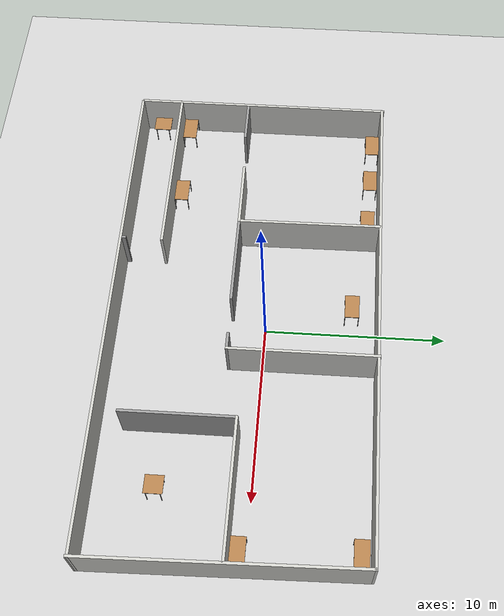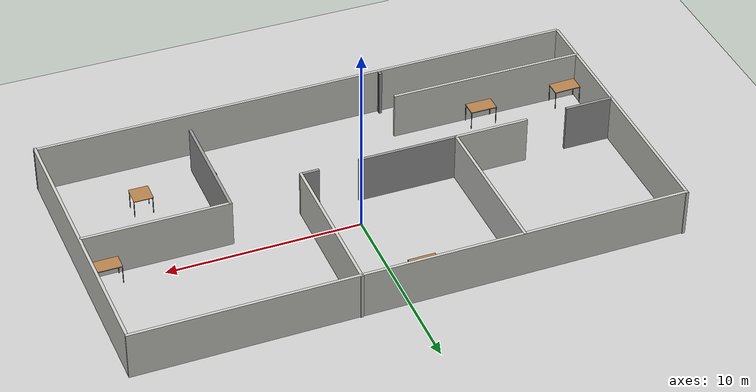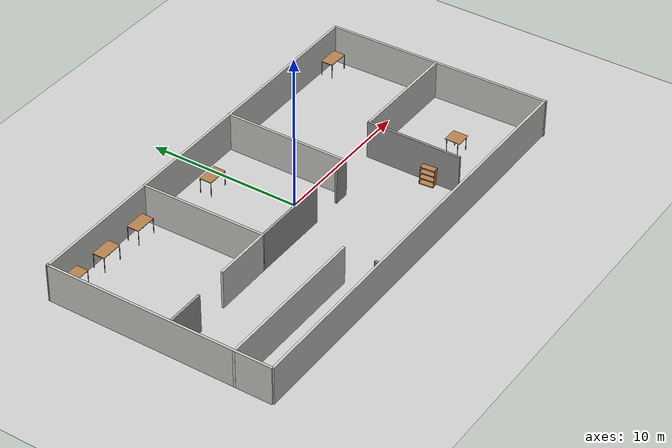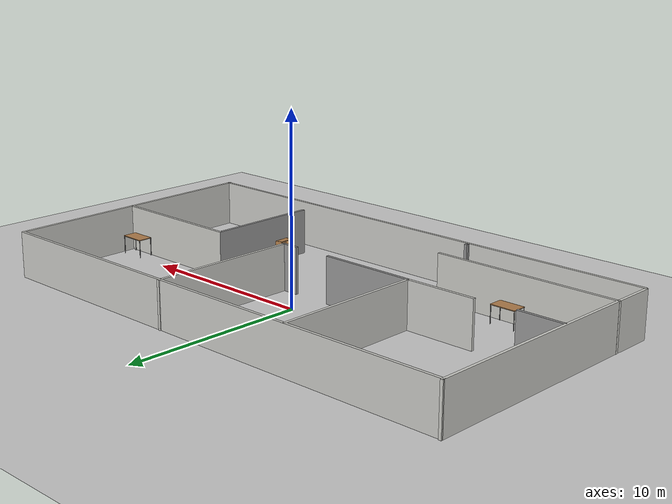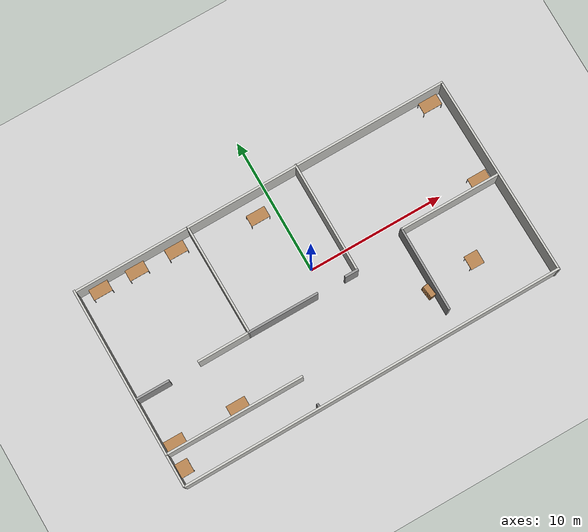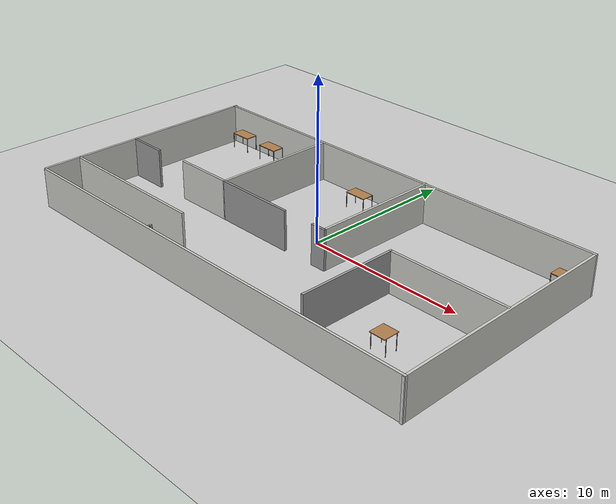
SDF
<sdf version="1.6">
 <world name="default">
  <light name="sun" type="directional">
   <pose>0 0 10 0 -0 0</pose>
   <diffuse>0.8 0.8 0.8 1</diffuse>
   <specular>0.1 0.1 0.1 1</specular>
   <attenuation>
    <range>1000</range>
    <constant>0.9</constant>
    <linear>0.01</linear>
    <quadratic>0.001</quadratic>
   </attenuation>
   <direction>-0.5 0.5 -1</direction>
  </light>
  <model name="ground_plane">
   <static>1</static>
   <link name="link">
    <collision name="collision">
     <geometry><plane><normal>0 0 1</normal><size>100 100</size></plane></geometry>
     <surface><friction><ode><mu>100</mu><mu2>50</mu2></ode></friction></surface>
    </collision>
    <visual name="visual">
     <cast_shadows>0</cast_shadows>
     <geometry><plane><normal>0 0 1</normal><size>100 100</size></plane></geometry>
     <material>
      <script><uri>file://media/materials/scripts/gazebo.material</uri><name>Gazebo/Grey</name></script>
     </material>
    </visual>
   </link>
  </model>
  <gravity>0 0 -9.8</gravity>
  <magnetic_field>6e-06 2.3e-05 -4.2e-05</magnetic_field>
  <atmosphere type="adiabatic"/>
  <physics name="default_physics" default="0" type="ode">
   <max_step_size>0.001</max_step_size>
   <real_time_factor>1</real_time_factor>
   <real_time_update_rate>1000</real_time_update_rate>
  </physics>
  <scene><ambient>0.4 0.4 0.4 1</ambient><background>0.7 0.7 0.7 1</background><shadows>1</shadows></scene>
  <spherical_coordinates>
   <surface_model>EARTH_WGS84</surface_model>
   <latitude_deg>0</latitude_deg>
   <longitude_deg>0</longitude_deg>
   <elevation>0</elevation>
   <heading_deg>0</heading_deg>
  </spherical_coordinates>
  <model name="ugly_house">
   <pose>-0.218496 -1.10283 0 0 -0 0</pose>
   <link name="Wall_10">
    <collision name="Wall_10_Collision">
     <geometry><box><size>28.1305 0.15 2.5</size></box></geometry>
     <pose>0 0 1.25 0 -0 0</pose>
    </collision>
    <visual name="Wall_10_Visual">
     <pose>0 0 1.25 0 -0 0</pose>
     <geometry><box><size>28.1305 0.15 2.5</size></box></geometry>
     <material>
      <script><uri>file://media/materials/scripts/gazebo.material</uri><name>Gazebo/CeilingTiled</name></script>
      <ambient>1 1 1 1</ambient>
     </material>
    </visual>
    <pose>-0.125051 7.31516 0 0 0 -3.13636</pose>
   </link>
   <link name="Wall_11">
    <collision name="Wall_11_Collision">
     <geometry><box><size>14.75 0.15 2.5</size></box></geometry>
     <pose>0 0 1.25 0 -0 0</pose>
    </collision>
    <visual name="Wall_11_Visual">
     <pose>0 0 1.25 0 -0 0</pose>
     <geometry><box><size>14.75 0.15 2.5</size></box></geometry>
     <material>
      <script><uri>file://media/materials/scripts/gazebo.material</uri><name>Gazebo/CeilingTiled</name></script>
      <ambient>1 1 1 1</ambient>
     </material>
    </visual>
    <pose>-14.1153 -0.004617 0 0 0 -1.5708</pose>
   </link>
   <link name="Wall_15">
    <collision name="Wall_15_Collision">
     <geometry><box><size>8.19219 0.15 2.5</size></box></geometry>
     <pose>0 0 1.25 0 -0 0</pose>
    </collision>
    <visual name="Wall_15_Visual">
     <pose>0 0 1.25 0 -0 0</pose>
     <geometry><box><size>8.19219 0.15 2.5</size></box></geometry>
     <material>
      <script><uri>file://media/materials/scripts/gazebo.material</uri><name>Gazebo/CeilingTiled</name></script>
      <ambient>1 1 1 1</ambient>
     </material>
    </visual>
    <pose>-5.57378 3.25942 0 0 0 -1.56274</pose>
   </link>
   <link name="Wall_16">
    <collision name="Wall_16_Collision">
     <geometry><box><size>3.92413 0.15 2.5</size></box></geometry>
     <pose>0 0 1.25 0 -0 0</pose>
    </collision>
    <visual name="Wall_16_Visual">
     <pose>0 0 1.25 0 -0 0</pose>
     <geometry><box><size>3.92413 0.15 2.5</size></box></geometry>
     <material>
      <script><uri>file://media/materials/scripts/gazebo.material</uri><name>Gazebo/CeilingTiled</name></script>
      <ambient>1 1 1 1</ambient>
     </material>
    </visual>
    <pose>-7.42842 -0.772989 0 0 0 -3.13553</pose>
   </link>
   <link name="Wall_18">
    <collision name="Wall_18_Collision">
     <geometry><box><size>8.25 0.15 2.5</size></box></geometry>
     <pose>0 0 1.25 0 -0 0</pose>
    </collision>
    <visual name="Wall_18_Visual">
     <pose>0 0 1.25 0 -0 0</pose>
     <geometry><box><size>8.25 0.15 2.5</size></box></geometry>
     <material>
      <script><uri>file://media/materials/scripts/gazebo.material</uri><name>Gazebo/CeilingTiled</name></script>
      <ambient>1 1 1 1</ambient>
     </material>
    </visual>
    <pose>2.62857 3.32344 0 0 0 -1.5708</pose>
   </link>
   <link name="Wall_21">
    <collision name="Wall_21_Collision">
     <geometry><box><size>7.5 0.15 2.5</size></box></geometry>
     <pose>0 0 1.25 0 -0 0</pose>
    </collision>
    <visual name="Wall_21_Visual">
     <pose>0 0 1.25 0 -0 0</pose>
     <geometry><box><size>7.5 0.15 2.5</size></box></geometry>
     <material>
      <script><uri>file://media/materials/scripts/gazebo.material</uri><name>Gazebo/CeilingTiled</name></script>
      <ambient>1 1 1 1</ambient>
     </material>
    </visual>
    <pose>10.2124 0.162229 0 0 -0 3.14159</pose>
   </link>
   <link name="Wall_24">
    <collision name="Wall_24_Collision">
     <geometry><box><size>10.25 0.15 2.5</size></box></geometry>
     <pose>0 0 1.25 0 -0 0</pose>
    </collision>
    <visual name="Wall_24_Visual">
     <pose>0 0 1.25 0 -0 0</pose>
     <geometry><box><size>10.25 0.15 2.5</size></box></geometry>
     <material>
      <script><uri>file://media/materials/scripts/gazebo.material</uri><name>Gazebo/CeilingTiled</name></script>
      <ambient>1 1 1 1</ambient>
     </material>
    </visual>
    <pose>-9.07004 -5.00192 0 0 -0 0</pose>
   </link>
   <link name="Wall_26">
    <collision name="Wall_26_Collision">
     <geometry><box><size>0.15 0.15 2.5</size></box></geometry>
     <pose>0 0 1.25 0 -0 0</pose>
    </collision>
    <visual name="Wall_26_Visual">
     <pose>0 0 1.25 0 -0 0</pose>
     <geometry><box><size>0.15 0.15 2.5</size></box></geometry>
     <material>
      <script><uri>file://media/materials/scripts/gazebo.material</uri><name>Gazebo/Grey</name></script>
      <ambient>1 1 1 1</ambient>
     </material>
    </visual>
    <pose>-4.02004 -7.10192 0 0 -0 0</pose>
   </link>
   <link name="Wall_27">
    <collision name="Wall_27_Collision">
     <geometry><box><size>0.25 0.15 2.5</size></box></geometry>
     <pose>0 0 1.25 0 -0 0</pose>
    </collision>
    <visual name="Wall_27_Visual">
     <pose>0 0 1.25 0 -0 0</pose>
     <geometry><box><size>0.25 0.15 2.5</size></box></geometry>
     <material>
      <script><uri>file://media/materials/scripts/gazebo.material</uri><name>Gazebo/Grey</name></script>
      <ambient>1 1 1 1</ambient>
     </material>
    </visual>
    <pose>-4.02004 -7.15193 0 0 0 -1.5708</pose>
   </link>
   <link name="Wall_30">
    <collision name="Wall_30_Collision">
     <geometry><box><size>2.5 0.15 2.5</size></box></geometry>
     <pose>0 0 1.25 0 -0 0</pose>
    </collision>
    <visual name="Wall_30_Visual">
     <pose>0 0 1.25 0 -0 0</pose>
     <geometry><box><size>2.5 0.15 2.5</size></box></geometry>
     <material>
      <script><uri>file://media/materials/scripts/gazebo.material</uri><name>Gazebo/Grey</name></script>
      <ambient>1 1 1 1</ambient>
     </material>
    </visual>
    <pose>-12.8441 -0.912766 0 0 -0 0</pose>
   </link>
   <link name="Wall_32">
    <collision name="Wall_32_Collision">
     <geometry><box><size>5.25 0.15 2.5</size></box></geometry>
     <pose>0 0 1.25 0 -0 0</pose>
    </collision>
    <visual name="Wall_32_Visual">
     <pose>0 0 1.25 0 -0 0</pose>
     <geometry><box><size>5.25 0.15 2.5</size></box></geometry>
     <material>
      <script><uri>file://media/materials/scripts/gazebo.material</uri><name>Gazebo/Grey</name></script>
      <ambient>1 1 1 1</ambient>
     </material>
    </visual>
    <pose>-2.99139 -0.761544 0 0 -0 0</pose>
   </link>
   <link name="Wall_34">
    <collision name="Wall_34_Collision">
     <geometry><box><size>1 0.15 2.5</size></box></geometry>
     <pose>0 0 1.25 0 -0 0</pose>
    </collision>
    <visual name="Wall_34_Visual">
     <pose>0 0 1.25 0 -0 0</pose>
     <geometry><box><size>1 0.15 2.5</size></box></geometry>
     <material>
      <script><uri>file://media/materials/scripts/gazebo.material</uri><name>Gazebo/Grey</name></script>
      <ambient>1 1 1 1</ambient>
     </material>
    </visual>
    <pose>2.20357 -0.726564 0 0 -0 3.14159</pose>
   </link>
   <link name="Wall_36">
    <collision name="Wall_36_Collision">
     <geometry><box><size>6.25 0.15 2.5</size></box></geometry>
     <pose>0 0 1.25 0 -0 0</pose>
    </collision>
    <visual name="Wall_36_Visual">
     <pose>0 0 1.25 0 -0 0</pose>
     <geometry><box><size>6.25 0.15 2.5</size></box></geometry>
     <material>
      <script><uri>file://media/materials/scripts/gazebo.material</uri><name>Gazebo/Grey</name></script>
      <ambient>1 1 1 1</ambient>
     </material>
    </visual>
    <pose>6.53735 -2.88777 0 0 0 -1.5708</pose>
   </link>
   <link name="Wall_7">
    <collision name="Wall_7_Collision">
     <geometry><box><size>28.2997 0.15 2.5</size></box></geometry>
     <pose>0 0 1.25 0 -0 0</pose>
    </collision>
    <visual name="Wall_7_Visual">
     <pose>0 0 1.25 0 -0 0</pose>
     <geometry><box><size>28.2997 0.15 2.5</size></box></geometry>
     <material>
      <script><uri>file://media/materials/scripts/gazebo.material</uri><name>Gazebo/CeilingTiled</name></script>
      <ambient>1 1 1 1</ambient>
     </material>
    </visual>
    <pose>0.043908 -7.31867 0 0 -0 0.004958</pose>
   </link>
   <link name="Wall_9">
    <collision name="Wall_9_Collision">
     <geometry><box><size>14.7895 0.15 2.5</size></box></geometry>
     <pose>0 0 1.25 0 -0 0</pose>
    </collision>
    <visual name="Wall_9_Visual">
     <pose>0 0 1.25 0 -0 0</pose>
     <geometry><box><size>14.7895 0.15 2.5</size></box></geometry>
     <material>
      <script><uri>file://media/materials/scripts/gazebo.material</uri><name>Gazebo/CeilingTiled</name></script>
      <ambient>1 1 1 1</ambient>
     </material>
    </visual>
    <pose>13.992 0.023252 0 0 -0 1.58812</pose>
   </link>
   <static>1</static>
  </model>
  <model name="table">
   <static>0</static>
   <link name="link">
    <collision name="surface">
     <pose>0 0 1 0 -0 0</pose>
     <geometry><box><size>1.5 0.8 0.03</size></box></geometry>
     <surface><friction><ode><mu>0.6</mu><mu2>0.6</mu2></ode></friction></surface>
    </collision>
    <visual name="visual1">
     <pose>0 0 1 0 -0 0</pose>
     <geometry><box><size>1.4 0.8 0.04</size></box></geometry>
     <material>
      <script><uri>file://media/materials/scripts/gazebo.material</uri><name>Gazebo/Wood</name></script>
     </material>
    </visual>
    <collision name="front_left_leg">
     <pose>0.68 0.38 0.5 0 -0 0</pose>
     <geometry><cylinder><radius>0.02</radius><length>1</length></cylinder></geometry>
    </collision>
    <visual name="front_left_leg">
     <pose>0.68 0.38 0.5 0 -0 0</pose>
     <geometry><cylinder><radius>0.02</radius><length>1</length></cylinder></geometry>
     <material>
      <script><uri>file://media/materials/scripts/gazebo.material</uri><name>Gazebo/Grey</name></script>
     </material>
    </visual>
    <collision name="front_right_leg">
     <pose>0.68 -0.38 0.5 0 -0 0</pose>
     <geometry><cylinder><radius>0.02</radius><length>1</length></cylinder></geometry>
    </collision>
    <visual name="front_right_leg">
     <pose>0.68 -0.38 0.5 0 -0 0</pose>
     <geometry><cylinder><radius>0.02</radius><length>1</length></cylinder></geometry>
     <material>
      <script><uri>file://media/materials/scripts/gazebo.material</uri><name>Gazebo/Grey</name></script>
     </material>
    </visual>
    <collision name="back_right_leg">
     <pose>-0.68 -0.38 0.5 0 -0 0</pose>
     <geometry><cylinder><radius>0.02</radius><length>1</length></cylinder></geometry>
    </collision>
    <visual name="back_right_leg">
     <pose>-0.68 -0.38 0.5 0 -0 0</pose>
     <geometry><cylinder><radius>0.02</radius><length>1</length></cylinder></geometry>
     <material>
      <script><uri>file://media/materials/scripts/gazebo.material</uri><name>Gazebo/Grey</name></script>
     </material>
    </visual>
    <collision name="back_left_leg">
     <pose>-0.68 0.38 0.5 0 -0 0</pose>
     <geometry><cylinder><radius>0.02</radius><length>1</length></cylinder></geometry>
    </collision>
    <visual name="back_left_leg">
     <pose>-0.68 0.38 0.5 0 -0 0</pose>
     <geometry><cylinder><radius>0.02</radius><length>1</length></cylinder></geometry>
     <material>
      <script><uri>file://media/materials/scripts/gazebo.material</uri><name>Gazebo/Grey</name></script>
     </material>
    </visual>
    <inertial>
     <inertia><ixx>1</ixx><ixy>0</ixy><ixz>0</ixz><iyy>1</iyy><iyz>0</iyz><izz>1</izz></inertia>
     <mass>1</mass>
    </inertial>
   </link>
   <pose>-1.3501 4.78866 -1e-06 -2e-06 0 0</pose>
  </model>
  <model name="table_0">
   <static>0</static>
   <link name="link">
    <collision name="surface">
     <pose>0 0 1 0 -0 0</pose>
     <geometry><box><size>1.5 0.8 0.03</size></box></geometry>
     <surface><friction><ode><mu>0.6</mu><mu2>0.6</mu2></ode></friction></surface>
    </collision>
    <visual name="visual1">
     <pose>0 0 1 0 -0 0</pose>
     <geometry><box><size>1.4 0.8 0.04</size></box></geometry>
     <material>
      <script><uri>file://media/materials/scripts/gazebo.material</uri><name>Gazebo/Wood</name></script>
     </material>
    </visual>
    <collision name="front_left_leg">
     <pose>0.68 0.38 0.5 0 -0 0</pose>
     <geometry><cylinder><radius>0.02</radius><length>1</length></cylinder></geometry>
    </collision>
    <visual name="front_left_leg">
     <pose>0.68 0.38 0.5 0 -0 0</pose>
     <geometry><cylinder><radius>0.02</radius><length>1</length></cylinder></geometry>
     <material>
      <script><uri>file://media/materials/scripts/gazebo.material</uri><name>Gazebo/Grey</name></script>
     </material>
    </visual>
    <collision name="front_right_leg">
     <pose>0.68 -0.38 0.5 0 -0 0</pose>
     <geometry><cylinder><radius>0.02</radius><length>1</length></cylinder></geometry>
    </collision>
    <visual name="front_right_leg">
     <pose>0.68 -0.38 0.5 0 -0 0</pose>
     <geometry><cylinder><radius>0.02</radius><length>1</length></cylinder></geometry>
     <material>
      <script><uri>file://media/materials/scripts/gazebo.material</uri><name>Gazebo/Grey</name></script>
     </material>
    </visual>
    <collision name="back_right_leg">
     <pose>-0.68 -0.38 0.5 0 -0 0</pose>
     <geometry><cylinder><radius>0.02</radius><length>1</length></cylinder></geometry>
    </collision>
    <visual name="back_right_leg">
     <pose>-0.68 -0.38 0.5 0 -0 0</pose>
     <geometry><cylinder><radius>0.02</radius><length>1</length></cylinder></geometry>
     <material>
      <script><uri>file://media/materials/scripts/gazebo.material</uri><name>Gazebo/Grey</name></script>
     </material>
    </visual>
    <collision name="back_left_leg">
     <pose>-0.68 0.38 0.5 0 -0 0</pose>
     <geometry><cylinder><radius>0.02</radius><length>1</length></cylinder></geometry>
    </collision>
    <visual name="back_left_leg">
     <pose>-0.68 0.38 0.5 0 -0 0</pose>
     <geometry><cylinder><radius>0.02</radius><length>1</length></cylinder></geometry>
     <material>
      <script><uri>file://media/materials/scripts/gazebo.material</uri><name>Gazebo/Grey</name></script>
     </material>
    </visual>
    <inertial>
     <inertia><ixx>1</ixx><ixy>0</ixy><ixz>0</ixz><iyy>1</iyy><iyz>0</iyz><izz>1</izz></inertia>
     <mass>1</mass>
    </inertial>
   </link>
   <pose>-12.8482 5.67188 0 0 -0 0.005232</pose>
  </model>
  <model name="table_1">
   <static>0</static>
   <link name="link">
    <collision name="surface">
     <pose>0 0 1 0 -0 0</pose>
     <geometry><box><size>1.5 0.8 0.03</size></box></geometry>
     <surface><friction><ode><mu>0.6</mu><mu2>0.6</mu2></ode></friction></surface>
    </collision>
    <visual name="visual1">
     <pose>0 0 1 0 -0 0</pose>
     <geometry><box><size>1.4 0.8 0.04</size></box></geometry>
     <material>
      <script><uri>file://media/materials/scripts/gazebo.material</uri><name>Gazebo/Wood</name></script>
     </material>
    </visual>
    <collision name="front_left_leg">
     <pose>0.68 0.38 0.5 0 -0 0</pose>
     <geometry><cylinder><radius>0.02</radius><length>1</length></cylinder></geometry>
    </collision>
    <visual name="front_left_leg">
     <pose>0.68 0.38 0.5 0 -0 0</pose>
     <geometry><cylinder><radius>0.02</radius><length>1</length></cylinder></geometry>
     <material>
      <script><uri>file://media/materials/scripts/gazebo.material</uri><name>Gazebo/Grey</name></script>
     </material>
    </visual>
    <collision name="front_right_leg">
     <pose>0.68 -0.38 0.5 0 -0 0</pose>
     <geometry><cylinder><radius>0.02</radius><length>1</length></cylinder></geometry>
    </collision>
    <visual name="front_right_leg">
     <pose>0.68 -0.38 0.5 0 -0 0</pose>
     <geometry><cylinder><radius>0.02</radius><length>1</length></cylinder></geometry>
     <material>
      <script><uri>file://media/materials/scripts/gazebo.material</uri><name>Gazebo/Grey</name></script>
     </material>
    </visual>
    <collision name="back_right_leg">
     <pose>-0.68 -0.38 0.5 0 -0 0</pose>
     <geometry><cylinder><radius>0.02</radius><length>1</length></cylinder></geometry>
    </collision>
    <visual name="back_right_leg">
     <pose>-0.68 -0.38 0.5 0 -0 0</pose>
     <geometry><cylinder><radius>0.02</radius><length>1</length></cylinder></geometry>
     <material>
      <script><uri>file://media/materials/scripts/gazebo.material</uri><name>Gazebo/Grey</name></script>
     </material>
    </visual>
    <collision name="back_left_leg">
     <pose>-0.68 0.38 0.5 0 -0 0</pose>
     <geometry><cylinder><radius>0.02</radius><length>1</length></cylinder></geometry>
    </collision>
    <visual name="back_left_leg">
     <pose>-0.68 0.38 0.5 0 -0 0</pose>
     <geometry><cylinder><radius>0.02</radius><length>1</length></cylinder></geometry>
     <material>
      <script><uri>file://media/materials/scripts/gazebo.material</uri><name>Gazebo/Grey</name></script>
     </material>
    </visual>
    <inertial>
     <inertia><ixx>1</ixx><ixy>0</ixy><ixz>0</ixz><iyy>1</iyy><iyz>0</iyz><izz>1</izz></inertia>
     <mass>1</mass>
    </inertial>
   </link>
   <pose>-7.19687 5.51552 -1e-06 -1e-06 0 0</pose>
  </model>
  <model name="table_2">
   <static>0</static>
   <link name="link">
    <collision name="surface">
     <pose>0 0 1 0 -0 0</pose>
     <geometry><box><size>1.5 0.8 0.03</size></box></geometry>
     <surface><friction><ode><mu>0.6</mu><mu2>0.6</mu2></ode></friction></surface>
    </collision>
    <visual name="visual1">
     <pose>0 0 1 0 -0 0</pose>
     <geometry><box><size>1.4 0.8 0.04</size></box></geometry>
     <material>
      <script><uri>file://media/materials/scripts/gazebo.material</uri><name>Gazebo/Wood</name></script>
     </material>
    </visual>
    <collision name="front_left_leg">
     <pose>0.68 0.38 0.5 0 -0 0</pose>
     <geometry><cylinder><radius>0.02</radius><length>1</length></cylinder></geometry>
    </collision>
    <visual name="front_left_leg">
     <pose>0.68 0.38 0.5 0 -0 0</pose>
     <geometry><cylinder><radius>0.02</radius><length>1</length></cylinder></geometry>
     <material>
      <script><uri>file://media/materials/scripts/gazebo.material</uri><name>Gazebo/Grey</name></script>
     </material>
    </visual>
    <collision name="front_right_leg">
     <pose>0.68 -0.38 0.5 0 -0 0</pose>
     <geometry><cylinder><radius>0.02</radius><length>1</length></cylinder></geometry>
    </collision>
    <visual name="front_right_leg">
     <pose>0.68 -0.38 0.5 0 -0 0</pose>
     <geometry><cylinder><radius>0.02</radius><length>1</length></cylinder></geometry>
     <material>
      <script><uri>file://media/materials/scripts/gazebo.material</uri><name>Gazebo/Grey</name></script>
     </material>
    </visual>
    <collision name="back_right_leg">
     <pose>-0.68 -0.38 0.5 0 -0 0</pose>
     <geometry><cylinder><radius>0.02</radius><length>1</length></cylinder></geometry>
    </collision>
    <visual name="back_right_leg">
     <pose>-0.68 -0.38 0.5 0 -0 0</pose>
     <geometry><cylinder><radius>0.02</radius><length>1</length></cylinder></geometry>
     <material>
      <script><uri>file://media/materials/scripts/gazebo.material</uri><name>Gazebo/Grey</name></script>
     </material>
    </visual>
    <collision name="back_left_leg">
     <pose>-0.68 0.38 0.5 0 -0 0</pose>
     <geometry><cylinder><radius>0.02</radius><length>1</length></cylinder></geometry>
    </collision>
    <visual name="back_left_leg">
     <pose>-0.68 0.38 0.5 0 -0 0</pose>
     <geometry><cylinder><radius>0.02</radius><length>1</length></cylinder></geometry>
     <material>
      <script><uri>file://media/materials/scripts/gazebo.material</uri><name>Gazebo/Grey</name></script>
     </material>
    </visual>
    <inertial>
     <inertia><ixx>1</ixx><ixy>0</ixy><ixz>0</ixz><iyy>1</iyy><iyz>0</iyz><izz>1</izz></inertia>
     <mass>1</mass>
    </inertial>
   </link>
   <pose>-8.77623 -5.5891 0 0 -0 0</pose>
  </model>
  <model name="table_1m">
   <static>1</static>
   <link name="link">
    <collision name="surface">
     <pose>0 0 1.01 0 -0 0</pose>
     <geometry><box><size>1 1.01 0.03</size></box></geometry>
    </collision>
    <visual name="visual1">
     <pose>0 0 1.01 0 -0 0</pose>
     <geometry><box><size>1 1.01 0.03</size></box></geometry>
     <material>
      <script><uri>file://media/materials/scripts/gazebo.material</uri><name>Gazebo/Wood</name></script>
     </material>
    </visual>
    <collision name="front_left_leg">
     <pose>0.48 0.38 0.5005 0 -0 0</pose>
     <geometry><cylinder><radius>0.02</radius><length>1.01</length></cylinder></geometry>
    </collision>
    <visual name="front_left_leg">
     <pose>0.48 0.38 0.5005 0 -0 0</pose>
     <geometry><cylinder><radius>0.02</radius><length>1.01</length></cylinder></geometry>
     <material>
      <script><uri>file://media/materials/scripts/gazebo.material</uri><name>Gazebo/Grey</name></script>
     </material>
    </visual>
    <collision name="front_right_leg">
     <pose>0.48 -0.38 0.5005 0 -0 0</pose>
     <geometry><cylinder><radius>0.02</radius><length>1.01</length></cylinder></geometry>
    </collision>
    <visual name="front_right_leg">
     <pose>0.48 -0.38 0.5005 0 -0 0</pose>
     <geometry><cylinder><radius>0.02</radius><length>1.01</length></cylinder></geometry>
     <material>
      <script><uri>file://media/materials/scripts/gazebo.material</uri><name>Gazebo/Grey</name></script>
     </material>
    </visual>
    <collision name="back_right_leg">
     <pose>-0.48 -0.38 0.5005 0 -0 0</pose>
     <geometry><cylinder><radius>0.02</radius><length>1.01</length></cylinder></geometry>
    </collision>
    <visual name="back_right_leg">
     <pose>-0.48 -0.38 0.5005 0 -0 0</pose>
     <geometry><cylinder><radius>0.02</radius><length>1.01</length></cylinder></geometry>
     <material>
      <script><uri>file://media/materials/scripts/gazebo.material</uri><name>Gazebo/Grey</name></script>
     </material>
    </visual>
    <collision name="back_left_leg">
     <pose>-0.48 0.38 0.5005 0 -0 0</pose>
     <geometry><cylinder><radius>0.02</radius><length>1.01</length></cylinder></geometry>
    </collision>
    <visual name="back_left_leg">
     <pose>-0.48 0.38 0.5005 0 -0 0</pose>
     <geometry><cylinder><radius>0.02</radius><length>1.01</length></cylinder></geometry>
     <material>
      <script><uri>file://media/materials/scripts/gazebo.material</uri><name>Gazebo/Grey</name></script>
     </material>
    </visual>
    <velocity_decay><linear>0</linear><angular>0</angular></velocity_decay>
   </link>
   <pose>-13.8314 -7.34126 0 0 -0 0</pose>
  </model>
  <model name="table_3">
   <static>0</static>
   <link name="link">
    <collision name="surface">
     <pose>0 0 1 0 -0 0</pose>
     <geometry><box><size>1.5 0.8 0.03</size></box></geometry>
     <surface><friction><ode><mu>0.6</mu><mu2>0.6</mu2></ode></friction></surface>
    </collision>
    <visual name="visual1">
     <pose>0 0 1 0 -0 0</pose>
     <geometry><box><size>1.4 0.8 0.04</size></box></geometry>
     <material>
      <script><uri>file://media/materials/scripts/gazebo.material</uri><name>Gazebo/Wood</name></script>
     </material>
    </visual>
    <collision name="front_left_leg">
     <pose>0.68 0.38 0.5 0 -0 0</pose>
     <geometry><cylinder><radius>0.02</radius><length>1</length></cylinder></geometry>
    </collision>
    <visual name="front_left_leg">
     <pose>0.68 0.38 0.5 0 -0 0</pose>
     <geometry><cylinder><radius>0.02</radius><length>1</length></cylinder></geometry>
     <material>
      <script><uri>file://media/materials/scripts/gazebo.material</uri><name>Gazebo/Grey</name></script>
     </material>
    </visual>
    <collision name="front_right_leg">
     <pose>0.68 -0.38 0.5 0 -0 0</pose>
     <geometry><cylinder><radius>0.02</radius><length>1</length></cylinder></geometry>
    </collision>
    <visual name="front_right_leg">
     <pose>0.68 -0.38 0.5 0 -0 0</pose>
     <geometry><cylinder><radius>0.02</radius><length>1</length></cylinder></geometry>
     <material>
      <script><uri>file://media/materials/scripts/gazebo.material</uri><name>Gazebo/Grey</name></script>
     </material>
    </visual>
    <collision name="back_right_leg">
     <pose>-0.68 -0.38 0.5 0 -0 0</pose>
     <geometry><cylinder><radius>0.02</radius><length>1</length></cylinder></geometry>
    </collision>
    <visual name="back_right_leg">
     <pose>-0.68 -0.38 0.5 0 -0 0</pose>
     <geometry><cylinder><radius>0.02</radius><length>1</length></cylinder></geometry>
     <material>
      <script><uri>file://media/materials/scripts/gazebo.material</uri><name>Gazebo/Grey</name></script>
     </material>
    </visual>
    <collision name="back_left_leg">
     <pose>-0.68 0.38 0.5 0 -0 0</pose>
     <geometry><cylinder><radius>0.02</radius><length>1</length></cylinder></geometry>
    </collision>
    <visual name="back_left_leg">
     <pose>-0.68 0.38 0.5 0 -0 0</pose>
     <geometry><cylinder><radius>0.02</radius><length>1</length></cylinder></geometry>
     <material>
      <script><uri>file://media/materials/scripts/gazebo.material</uri><name>Gazebo/Grey</name></script>
     </material>
    </visual>
    <inertial>
     <inertia><ixx>1</ixx><ixy>0</ixy><ixz>0</ixz><iyy>1</iyy><iyz>0</iyz><izz>1</izz></inertia>
     <mass>1</mass>
    </inertial>
   </link>
   <pose>-10.148 5.60095 0 0 -0 0</pose>
  </model>
  <model name="table_4">
   <static>0</static>
   <link name="link">
    <collision name="surface">
     <pose>0 0 1 0 -0 0</pose>
     <geometry><box><size>1.5 0.8 0.03</size></box></geometry>
     <surface><friction><ode><mu>0.6</mu><mu2>0.6</mu2></ode></friction></surface>
    </collision>
    <visual name="visual1">
     <pose>0 0 1 0 -0 0</pose>
     <geometry><box><size>1.4 0.8 0.04</size></box></geometry>
     <material>
      <script><uri>file://media/materials/scripts/gazebo.material</uri><name>Gazebo/Wood</name></script>
     </material>
    </visual>
    <collision name="front_left_leg">
     <pose>0.68 0.38 0.5 0 -0 0</pose>
     <geometry><cylinder><radius>0.02</radius><length>1</length></cylinder></geometry>
    </collision>
    <visual name="front_left_leg">
     <pose>0.68 0.38 0.5 0 -0 0</pose>
     <geometry><cylinder><radius>0.02</radius><length>1</length></cylinder></geometry>
     <material>
      <script><uri>file://media/materials/scripts/gazebo.material</uri><name>Gazebo/Grey</name></script>
     </material>
    </visual>
    <collision name="front_right_leg">
     <pose>0.68 -0.38 0.5 0 -0 0</pose>
     <geometry><cylinder><radius>0.02</radius><length>1</length></cylinder></geometry>
    </collision>
    <visual name="front_right_leg">
     <pose>0.68 -0.38 0.5 0 -0 0</pose>
     <geometry><cylinder><radius>0.02</radius><length>1</length></cylinder></geometry>
     <material>
      <script><uri>file://media/materials/scripts/gazebo.material</uri><name>Gazebo/Grey</name></script>
     </material>
    </visual>
    <collision name="back_right_leg">
     <pose>-0.68 -0.38 0.5 0 -0 0</pose>
     <geometry><cylinder><radius>0.02</radius><length>1</length></cylinder></geometry>
    </collision>
    <visual name="back_right_leg">
     <pose>-0.68 -0.38 0.5 0 -0 0</pose>
     <geometry><cylinder><radius>0.02</radius><length>1</length></cylinder></geometry>
     <material>
      <script><uri>file://media/materials/scripts/gazebo.material</uri><name>Gazebo/Grey</name></script>
     </material>
    </visual>
    <collision name="back_left_leg">
     <pose>-0.68 0.38 0.5 0 -0 0</pose>
     <geometry><cylinder><radius>0.02</radius><length>1</length></cylinder></geometry>
    </collision>
    <visual name="back_left_leg">
     <pose>-0.68 0.38 0.5 0 -0 0</pose>
     <geometry><cylinder><radius>0.02</radius><length>1</length></cylinder></geometry>
     <material>
      <script><uri>file://media/materials/scripts/gazebo.material</uri><name>Gazebo/Grey</name></script>
     </material>
    </visual>
    <inertial>
     <inertia><ixx>1</ixx><ixy>0</ixy><ixz>0</ixz><iyy>1</iyy><iyz>0</iyz><izz>1</izz></inertia>
     <mass>1</mass>
    </inertial>
   </link>
   <pose>-13.532 -5.60367 0.016315 0 0.023309 -4e-06</pose>
  </model>
  <model name="table_1m_0">
   <static>1</static>
   <link name="link">
    <collision name="surface">
     <pose>0 0 1.01 0 -0 0</pose>
     <geometry><box><size>1 1.01 0.03</size></box></geometry>
    </collision>
    <visual name="visual1">
     <pose>0 0 1.01 0 -0 0</pose>
     <geometry><box><size>1 1.01 0.03</size></box></geometry>
     <material>
      <script><uri>file://media/materials/scripts/gazebo.material</uri><name>Gazebo/Wood</name></script>
     </material>
    </visual>
    <collision name="front_left_leg">
     <pose>0.48 0.38 0.5005 0 -0 0</pose>
     <geometry><cylinder><radius>0.02</radius><length>1.01</length></cylinder></geometry>
    </collision>
    <visual name="front_left_leg">
     <pose>0.48 0.38 0.5005 0 -0 0</pose>
     <geometry><cylinder><radius>0.02</radius><length>1.01</length></cylinder></geometry>
     <material>
      <script><uri>file://media/materials/scripts/gazebo.material</uri><name>Gazebo/Grey</name></script>
     </material>
    </visual>
    <collision name="front_right_leg">
     <pose>0.48 -0.38 0.5005 0 -0 0</pose>
     <geometry><cylinder><radius>0.02</radius><length>1.01</length></cylinder></geometry>
    </collision>
    <visual name="front_right_leg">
     <pose>0.48 -0.38 0.5005 0 -0 0</pose>
     <geometry><cylinder><radius>0.02</radius><length>1.01</length></cylinder></geometry>
     <material>
      <script><uri>file://media/materials/scripts/gazebo.material</uri><name>Gazebo/Grey</name></script>
     </material>
    </visual>
    <collision name="back_right_leg">
     <pose>-0.48 -0.38 0.5005 0 -0 0</pose>
     <geometry><cylinder><radius>0.02</radius><length>1.01</length></cylinder></geometry>
    </collision>
    <visual name="back_right_leg">
     <pose>-0.48 -0.38 0.5005 0 -0 0</pose>
     <geometry><cylinder><radius>0.02</radius><length>1.01</length></cylinder></geometry>
     <material>
      <script><uri>file://media/materials/scripts/gazebo.material</uri><name>Gazebo/Grey</name></script>
     </material>
    </visual>
    <collision name="back_left_leg">
     <pose>-0.48 0.38 0.5005 0 -0 0</pose>
     <geometry><cylinder><radius>0.02</radius><length>1.01</length></cylinder></geometry>
    </collision>
    <visual name="back_left_leg">
     <pose>-0.48 0.38 0.5005 0 -0 0</pose>
     <geometry><cylinder><radius>0.02</radius><length>1.01</length></cylinder></geometry>
     <material>
      <script><uri>file://media/materials/scripts/gazebo.material</uri><name>Gazebo/Grey</name></script>
     </material>
    </visual>
    <velocity_decay><linear>0</linear><angular>0</angular></velocity_decay>
   </link>
   <pose>9.6288 -4.94104 0 0 -0 0</pose>
  </model>
  <model name="table_6">
   <static>0</static>
   <link name="link">
    <collision name="surface">
     <pose>0 0 1 0 -0 0</pose>
     <geometry><box><size>1.5 0.8 0.03</size></box></geometry>
     <surface><friction><ode><mu>0.6</mu><mu2>0.6</mu2></ode></friction></surface>
    </collision>
    <visual name="visual1">
     <pose>0 0 1 0 -0 0</pose>
     <geometry><box><size>1.4 0.8 0.04</size></box></geometry>
     <material>
      <script><uri>file://media/materials/scripts/gazebo.material</uri><name>Gazebo/Wood</name></script>
     </material>
    </visual>
    <collision name="front_left_leg">
     <pose>0.68 0.38 0.5 0 -0 0</pose>
     <geometry><cylinder><radius>0.02</radius><length>1</length></cylinder></geometry>
    </collision>
    <visual name="front_left_leg">
     <pose>0.68 0.38 0.5 0 -0 0</pose>
     <geometry><cylinder><radius>0.02</radius><length>1</length></cylinder></geometry>
     <material>
      <script><uri>file://media/materials/scripts/gazebo.material</uri><name>Gazebo/Grey</name></script>
     </material>
    </visual>
    <collision name="front_right_leg">
     <pose>0.68 -0.38 0.5 0 -0 0</pose>
     <geometry><cylinder><radius>0.02</radius><length>1</length></cylinder></geometry>
    </collision>
    <visual name="front_right_leg">
     <pose>0.68 -0.38 0.5 0 -0 0</pose>
     <geometry><cylinder><radius>0.02</radius><length>1</length></cylinder></geometry>
     <material>
      <script><uri>file://media/materials/scripts/gazebo.material</uri><name>Gazebo/Grey</name></script>
     </material>
    </visual>
    <collision name="back_right_leg">
     <pose>-0.68 -0.38 0.5 0 -0 0</pose>
     <geometry><cylinder><radius>0.02</radius><length>1</length></cylinder></geometry>
    </collision>
    <visual name="back_right_leg">
     <pose>-0.68 -0.38 0.5 0 -0 0</pose>
     <geometry><cylinder><radius>0.02</radius><length>1</length></cylinder></geometry>
     <material>
      <script><uri>file://media/materials/scripts/gazebo.material</uri><name>Gazebo/Grey</name></script>
     </material>
    </visual>
    <collision name="back_left_leg">
     <pose>-0.68 0.38 0.5 0 -0 0</pose>
     <geometry><cylinder><radius>0.02</radius><length>1</length></cylinder></geometry>
    </collision>
    <visual name="back_left_leg">
     <pose>-0.68 0.38 0.5 0 -0 0</pose>
     <geometry><cylinder><radius>0.02</radius><length>1</length></cylinder></geometry>
     <material>
      <script><uri>file://media/materials/scripts/gazebo.material</uri><name>Gazebo/Grey</name></script>
     </material>
    </visual>
    <inertial>
     <inertia><ixx>1</ixx><ixy>0</ixy><ixz>0</ixz><iyy>1</iyy><iyz>0</iyz><izz>1</izz></inertia>
     <mass>1</mass>
    </inertial>
   </link>
   <pose>12.5097 5.6855 0 0 -0 0</pose>
  </model>
  <model name="table_7">
   <static>0</static>
   <link name="link">
    <collision name="surface">
     <pose>0 0 1 0 -0 0</pose>
     <geometry><box><size>1.5 0.8 0.03</size></box></geometry>
     <surface><friction><ode><mu>0.6</mu><mu2>0.6</mu2></ode></friction></surface>
    </collision>
    <visual name="visual1">
     <pose>0 0 1 0 -0 0</pose>
     <geometry><box><size>1.4 0.8 0.04</size></box></geometry>
     <material>
      <script><uri>file://media/materials/scripts/gazebo.material</uri><name>Gazebo/Wood</name></script>
     </material>
    </visual>
    <collision name="front_left_leg">
     <pose>0.68 0.38 0.5 0 -0 0</pose>
     <geometry><cylinder><radius>0.02</radius><length>1</length></cylinder></geometry>
    </collision>
    <visual name="front_left_leg">
     <pose>0.68 0.38 0.5 0 -0 0</pose>
     <geometry><cylinder><radius>0.02</radius><length>1</length></cylinder></geometry>
     <material>
      <script><uri>file://media/materials/scripts/gazebo.material</uri><name>Gazebo/Grey</name></script>
     </material>
    </visual>
    <collision name="front_right_leg">
     <pose>0.68 -0.38 0.5 0 -0 0</pose>
     <geometry><cylinder><radius>0.02</radius><length>1</length></cylinder></geometry>
    </collision>
    <visual name="front_right_leg">
     <pose>0.68 -0.38 0.5 0 -0 0</pose>
     <geometry><cylinder><radius>0.02</radius><length>1</length></cylinder></geometry>
     <material>
      <script><uri>file://media/materials/scripts/gazebo.material</uri><name>Gazebo/Grey</name></script>
     </material>
    </visual>
    <collision name="back_right_leg">
     <pose>-0.68 -0.38 0.5 0 -0 0</pose>
     <geometry><cylinder><radius>0.02</radius><length>1</length></cylinder></geometry>
    </collision>
    <visual name="back_right_leg">
     <pose>-0.68 -0.38 0.5 0 -0 0</pose>
     <geometry><cylinder><radius>0.02</radius><length>1</length></cylinder></geometry>
     <material>
      <script><uri>file://media/materials/scripts/gazebo.material</uri><name>Gazebo/Grey</name></script>
     </material>
    </visual>
    <collision name="back_left_leg">
     <pose>-0.68 0.38 0.5 0 -0 0</pose>
     <geometry><cylinder><radius>0.02</radius><length>1</length></cylinder></geometry>
    </collision>
    <visual name="back_left_leg">
     <pose>-0.68 0.38 0.5 0 -0 0</pose>
     <geometry><cylinder><radius>0.02</radius><length>1</length></cylinder></geometry>
     <material>
      <script><uri>file://media/materials/scripts/gazebo.material</uri><name>Gazebo/Grey</name></script>
     </material>
    </visual>
    <inertial>
     <inertia><ixx>1</ixx><ixy>0</ixy><ixz>0</ixz><iyy>1</iyy><iyz>0</iyz><izz>1</izz></inertia>
     <mass>1</mass>
    </inertial>
   </link>
   <pose>12.7248 -0.417511 -1e-06 -2e-06 0 0</pose>
  </model>
  <model name="bookshelf">
   <static>1</static>
   <link name="link">
    <inertial><mass>1</mass></inertial>
    <collision name="back">
     <pose>0 0.005 0.6 0 -0 0</pose>
     <geometry><box><size>0.9 0.01 1.2</size></box></geometry>
    </collision>
    <visual name="visual1">
     <pose>0 0.005 0.6 0 -0 0</pose>
     <geometry><box><size>0.9 0.01 1.2</size></box></geometry>
     <material>
      <script><uri>file://media/materials/scripts/gazebo.material</uri><name>Gazebo/Wood</name></script>
     </material>
    </visual>
    <collision name="left_side">
     <pose>0.45 -0.195 0.6 0 -0 0</pose>
     <geometry><box><size>0.02 0.4 1.2</size></box></geometry>
    </collision>
    <visual name="visual2">
     <pose>0.45 -0.195 0.6 0 -0 0</pose>
     <geometry><box><size>0.02 0.4 1.2</size></box></geometry>
     <material>
      <script><uri>file://media/materials/scripts/gazebo.material</uri><name>Gazebo/Wood</name></script>
     </material>
    </visual>
    <collision name="right_side">
     <pose>-0.45 -0.195 0.6 0 -0 0</pose>
     <geometry><box><size>0.02 0.4 1.2</size></box></geometry>
    </collision>
    <visual name="visual3">
     <pose>-0.45 -0.195 0.6 0 -0 0</pose>
     <geometry><box><size>0.02 0.4 1.2</size></box></geometry>
     <material>
      <script><uri>file://media/materials/scripts/gazebo.material</uri><name>Gazebo/Wood</name></script>
     </material>
    </visual>
    <collision name="bottom">
     <pose>0 -0.195 0.03 0 -0 0</pose>
     <geometry><box><size>0.88 0.4 0.06</size></box></geometry>
    </collision>
    <visual name="visual4">
     <pose>0 -0.195 0.03 0 -0 0</pose>
     <geometry><box><size>0.88 0.4 0.06</size></box></geometry>
     <material>
      <script><uri>file://media/materials/scripts/gazebo.material</uri><name>Gazebo/Wood</name></script>
     </material>
    </visual>
    <collision name="top">
     <pose>0 -0.195 1.19 0 -0 0</pose>
     <geometry><box><size>0.88 0.4 0.02</size></box></geometry>
    </collision>
    <visual name="visual5">
     <pose>0 -0.195 1.19 0 -0 0</pose>
     <geometry><box><size>0.88 0.4 0.02</size></box></geometry>
     <material>
      <script><uri>file://media/materials/scripts/gazebo.material</uri><name>Gazebo/Wood</name></script>
     </material>
    </visual>
    <collision name="low_shelf">
     <pose>0 -0.195 0.43 0 -0 0</pose>
     <geometry><box><size>0.88 0.4 0.02</size></box></geometry>
    </collision>
    <visual name="visual6">
     <pose>0 -0.195 0.43 0 -0 0</pose>
     <geometry><box><size>0.88 0.4 0.02</size></box></geometry>
     <material>
      <script><uri>file://media/materials/scripts/gazebo.material</uri><name>Gazebo/Wood</name></script>
     </material>
    </visual>
    <collision name="high_shelf">
     <pose>0 -0.195 0.8 0 -0 0</pose>
     <geometry><box><size>0.88 0.4 0.02</size></box></geometry>
    </collision>
    <visual name="visual7">
     <pose>0 -0.195 0.8 0 -0 0</pose>
     <geometry><box><size>0.88 0.4 0.02</size></box></geometry>
     <material>
      <script><uri>file://media/materials/scripts/gazebo.material</uri><name>Gazebo/Wood</name></script>
     </material>
    </visual>
   </link>
   <pose>6.14368 -5.20976 0 -0.028394 0.032478 -1.45108</pose>
  </model>
 </world>
</sdf>
